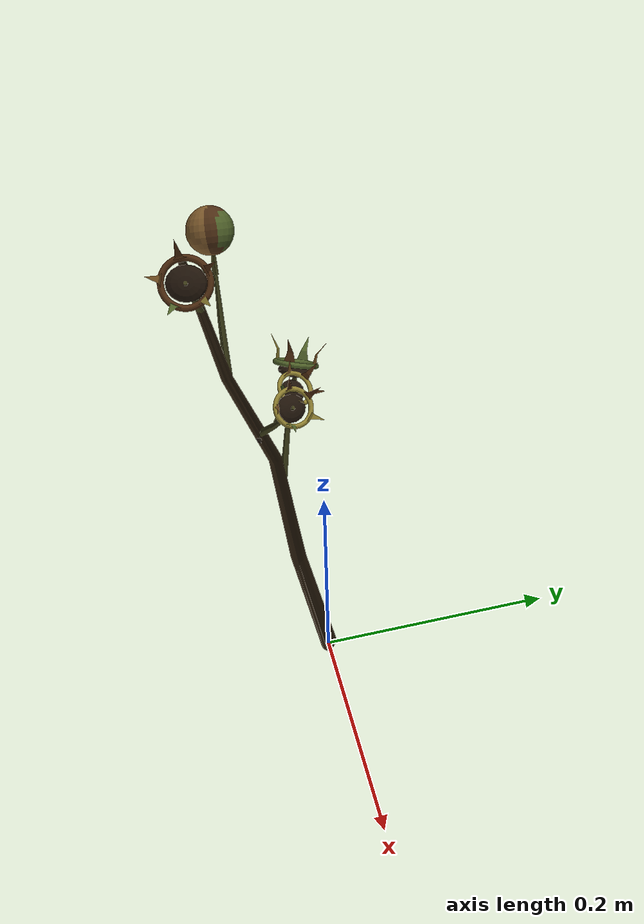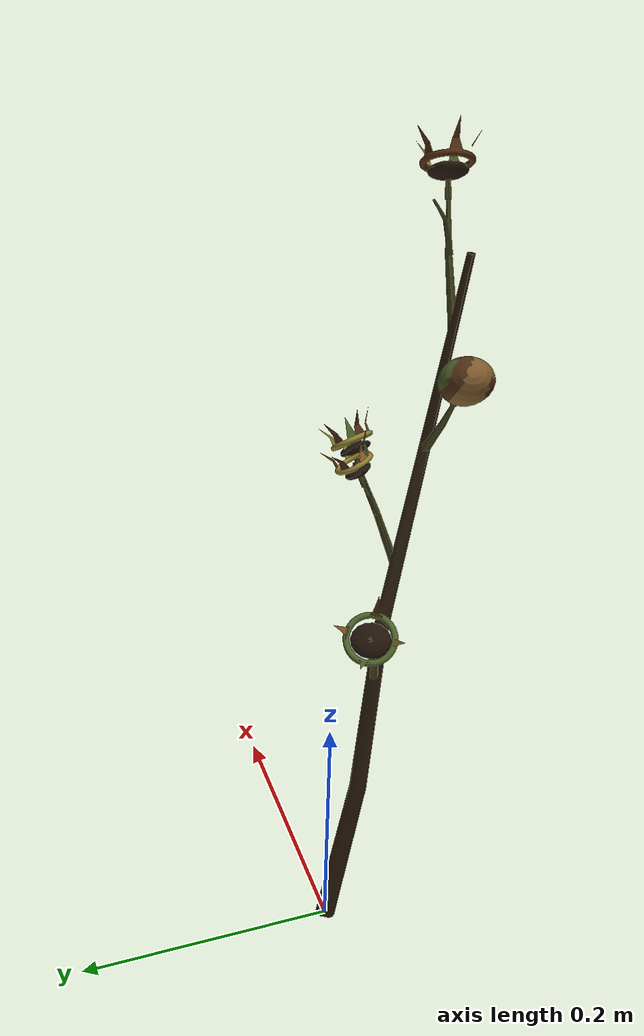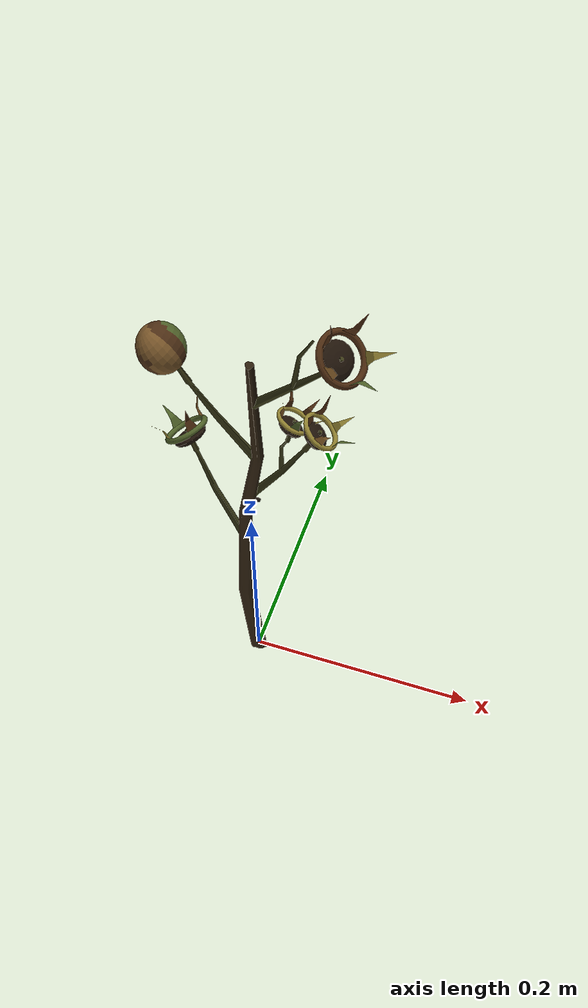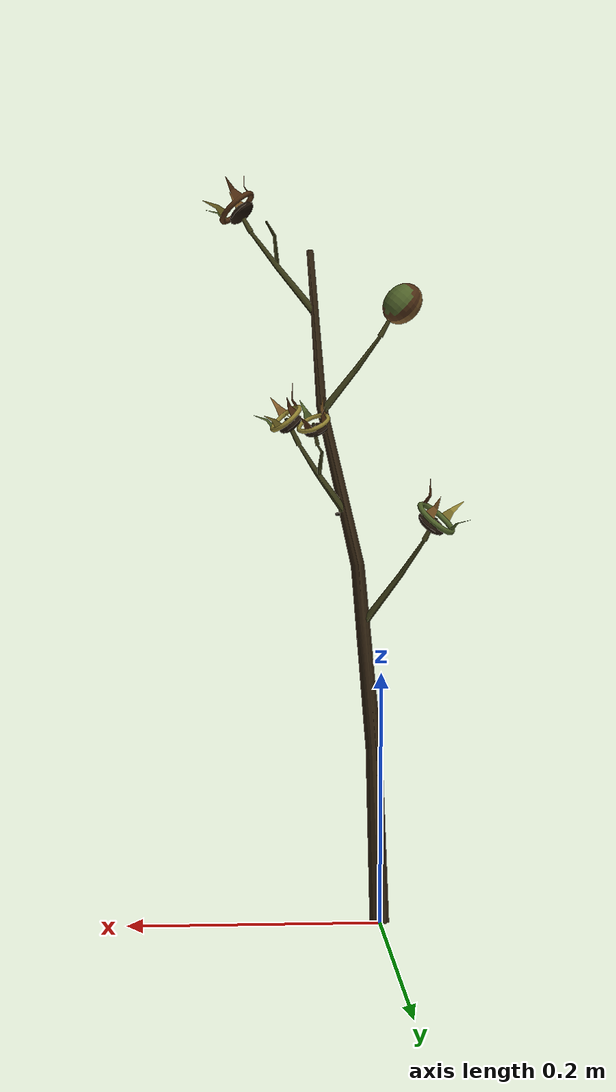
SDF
<?xml version="1.0"?>
<sdf version="1.7">
  <model name="branch_variant_C_mixed_brown_01">
    <static>true</static>
    <link name="branch_variant_C_mixed_brown_01_link">
      <visual name="branch_variant_C_mixed_brown_01_visual">
        <geometry><mesh><uri>model://branch_variant_C_mixed_brown_01/meshes/branch_variant_C_mixed_brown_01.dae</uri></mesh></geometry>
      </visual>
      <collision name="branch_variant_C_mixed_brown_01_stem_collision">
        <pose>0 0 0.27000 0 0 0</pose>
        <geometry><cylinder><radius>0.018</radius><length>0.54000</length></cylinder></geometry>
      </collision>
    </link>
  </model>
</sdf>
